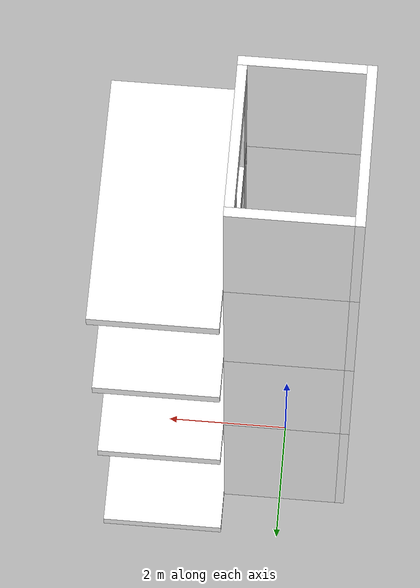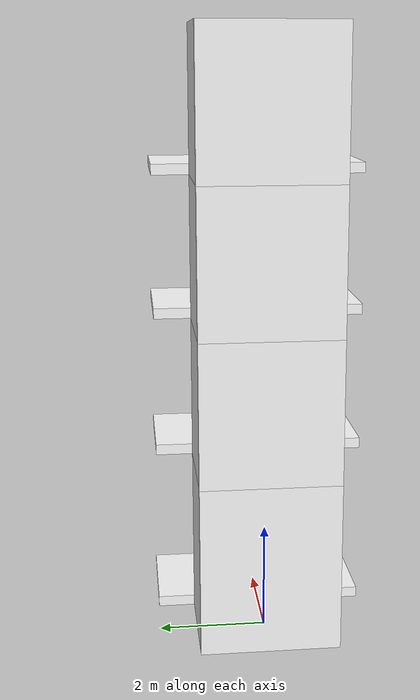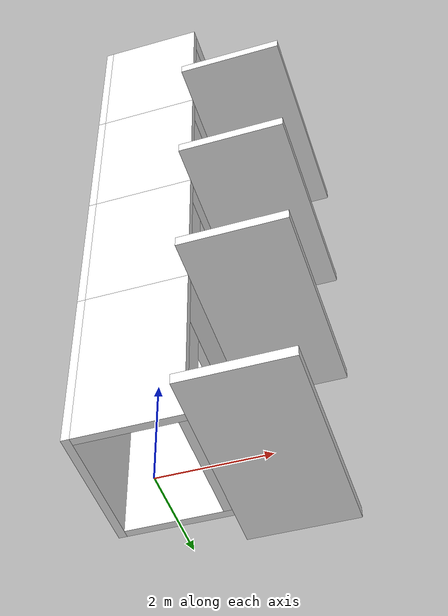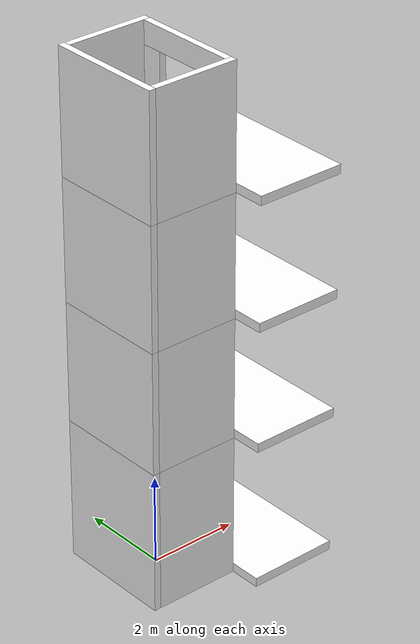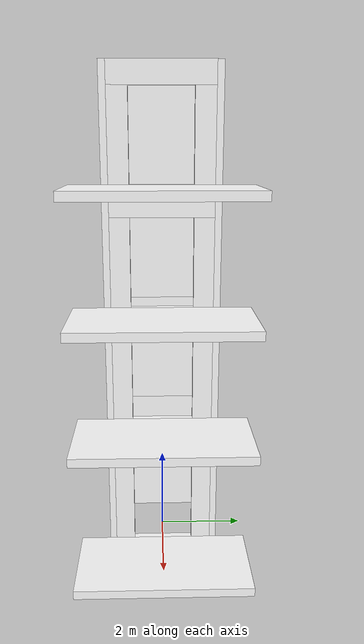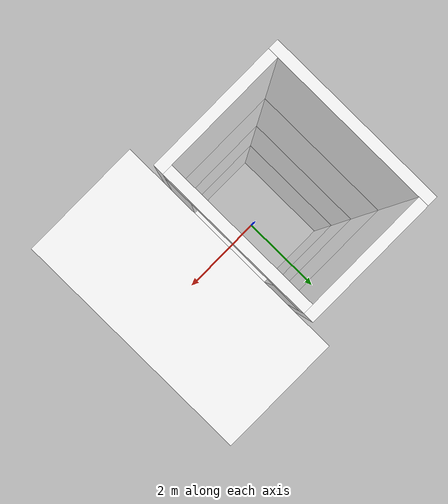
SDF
<?xml version="1.0"?>
<sdf version="1.6">
  <model name="elevator">
    <pose>0 0 0.2 0 0 0</pose>
    <!-- ========================= START OF WALLS ========================== -->
    <link name="structure">
      <pose>0.0 0.0 0.0 0 0 0</pose>
      <inertial>
        <mass>1000</mass>
        <inertia>
          <ixx>10974.166666666666</ixx>
          <ixy>0</ixy>
          <ixz>0</ixz>
          <iyy>10854.166666666666</iyy>
          <iyz>0</iyz>
          <izz>546.6666666666667</izz>
        </inertia>
        <pose>0 0 3.2 0 0 0</pose>
      </inertial>
      <visual name="wall_front_bottom_visual_0">
        <pose>0.875 0.0 -0.1 0 0 0</pose>
        <geometry>
          <box>
            <size>0.15 2.3 0.2</size>
          </box>
        </geometry>
        <material>
          <ambient>1.0 1.0 1.0 1</ambient>
          <diffuse>1.0 1.0 1.0 1</diffuse>
          <specular>0.1 0.1 0.1 1</specular>
        </material>
      </visual>
      <collision name="wall_front_bottom_collision_0">
        <pose>0.875 0.0 -0.1 0 0 0</pose>
        <geometry>
          <box>
            <size>0.15 2.3 0.2</size>
          </box>
        </geometry>
      </collision>
      <visual name="wall_front_top_visual_0">
        <pose>0.875 0.0 2.5 0 0 0</pose>
        <geometry>
          <box>
            <size>0.15 2.3 1.0</size>
          </box>
        </geometry>
        <material>
          <ambient>1.0 1.0 1.0 1</ambient>
          <diffuse>1.0 1.0 1.0 1</diffuse>
          <specular>0.1 0.1 0.1 1</specular>
        </material>
      </visual>
      <collision name="wall_front_top_collision_0">
        <pose>0.875 0.0 2.5 0 0 0</pose>
        <geometry>
          <box>
            <size>0.15 2.3 1.0</size>
          </box>
        </geometry>
      </collision>
      <visual name="wall_front_right_visual_0">
        <pose>0.875 -0.925 1.0 0 0 0</pose>
        <geometry>
          <box>
            <size>0.15 0.45 2.0</size>
          </box>
        </geometry>
        <material>
          <ambient>1.0 1.0 1.0 1</ambient>
          <diffuse>1.0 1.0 1.0 1</diffuse>
          <specular>0.1 0.1 0.1 1</specular>
        </material>
      </visual>
      <collision name="wall_front_right_collision_0">
        <pose>0.875 -0.925 1.0 0 0 0</pose>
        <geometry>
          <box>
            <size>0.15 0.45 2.0</size>
          </box>
        </geometry>
      </collision>
      <visual name="wall_front_left_visual_0">
        <pose>0.875 0.925 1.0 0 0 0</pose>
        <geometry>
          <box>
            <size>0.15 0.45 2.0</size>
          </box>
        </geometry>
        <material>
          <ambient>1.0 1.0 1.0 1</ambient>
          <diffuse>1.0 1.0 1.0 1</diffuse>
          <specular>0.1 0.1 0.1 1</specular>
        </material>
      </visual>
      <collision name="wall_front_left_collision_0">
        <pose>0.875 0.925 1.0 0 0 0</pose>
        <geometry>
          <box>
            <size>0.15 0.45 2.0</size>
          </box>
        </geometry>
      </collision>
      <visual name="wall_right_visual_0">
        <pose>0.0 -1.225 1.4 0 0 0</pose>
        <geometry>
          <box>
            <size>1.9 0.15 3.2</size>
          </box>
        </geometry>
        <material>
          <ambient>1.0 1.0 1.0 1</ambient>
          <diffuse>1.0 1.0 1.0 1</diffuse>
          <specular>0.1 0.1 0.1 1</specular>
        </material>
      </visual>
      <collision name="wall_right_collision_0">
        <pose>0.0 -1.225 1.4 0 0 0</pose>
        <geometry>
          <box>
            <size>1.9 0.15 3.2</size>
          </box>
        </geometry>
      </collision>
      <visual name="wall_left_visual_0">
        <pose>0.0 1.225 1.4 0 0 0</pose>
        <geometry>
          <box>
            <size>1.9 0.15 3.2</size>
          </box>
        </geometry>
        <material>
          <ambient>1.0 1.0 1.0 1</ambient>
          <diffuse>1.0 1.0 1.0 1</diffuse>
          <specular>0.1 0.1 0.1 1</specular>
        </material>
      </visual>
      <collision name="wall_left_collision_0">
        <pose>0.0 1.225 1.4 0 0 0</pose>
        <geometry>
          <box>
            <size>1.9 0.15 3.2</size>
          </box>
        </geometry>
      </collision>
      <visual name="wall_rear_visual_0">
        <pose>-1.025 0.0 1.4 0 0 0</pose>
        <geometry>
          <box>
            <size>0.15 2.6 3.2</size>
          </box>
        </geometry>
        <material>
          <ambient>1.0 1.0 1.0 1</ambient>
          <diffuse>1.0 1.0 1.0 1</diffuse>
          <specular>0.1 0.1 0.1 1</specular>
        </material>
      </visual>
      <collision name="wall_rear_collision_0">
        <pose>-1.025 0.0 1.4 0 0 0</pose>
        <geometry>
          <box>
            <size>0.15 2.6 3.2</size>
          </box>
        </geometry>
      </collision>
      <visual name="entrance_visual_0">
        <pose>1.95 0.0 -0.1 0 0 0</pose>
        <geometry>
          <box>
            <size>2.0 4.0 0.2</size>
          </box>
        </geometry>
        <material>
          <ambient>1.0 1.0 1.0 1</ambient>
          <diffuse>1.0 1.0 1.0 1</diffuse>
          <specular>0.1 0.1 0.1 1</specular>
        </material>
      </visual>
      <collision name="entrance_collision_0">
        <pose>1.95 0.0 -0.1 0 0 0</pose>
        <geometry>
          <box>
            <size>2.0 4.0 0.2</size>
          </box>
        </geometry>
      </collision>
      <visual name="wall_front_bottom_visual_1">
        <pose>0.875 0.0 3.1 0 0 0</pose>
        <geometry>
          <box>
            <size>0.15 2.3 0.2</size>
          </box>
        </geometry>
        <material>
          <ambient>1.0 1.0 1.0 1</ambient>
          <diffuse>1.0 1.0 1.0 1</diffuse>
          <specular>0.1 0.1 0.1 1</specular>
        </material>
      </visual>
      <collision name="wall_front_bottom_collision_1">
        <pose>0.875 0.0 3.1 0 0 0</pose>
        <geometry>
          <box>
            <size>0.15 2.3 0.2</size>
          </box>
        </geometry>
      </collision>
      <visual name="wall_front_top_visual_1">
        <pose>0.875 0.0 5.45 0 0 0</pose>
        <geometry>
          <box>
            <size>0.15 2.3 0.5</size>
          </box>
        </geometry>
        <material>
          <ambient>1.0 1.0 1.0 1</ambient>
          <diffuse>1.0 1.0 1.0 1</diffuse>
          <specular>0.1 0.1 0.1 1</specular>
        </material>
      </visual>
      <collision name="wall_front_top_collision_1">
        <pose>0.875 0.0 5.45 0 0 0</pose>
        <geometry>
          <box>
            <size>0.15 2.3 0.5</size>
          </box>
        </geometry>
      </collision>
      <visual name="wall_front_right_visual_1">
        <pose>0.875 -0.925 4.2 0 0 0</pose>
        <geometry>
          <box>
            <size>0.15 0.45 2.0</size>
          </box>!--
        </geometry>
        <material>
          <ambient>1.0 1.0 1.0 1</ambient>
          <diffuse>1.0 1.0 1.0 1</diffuse>
          <specular>0.1 0.1 0.1 1</specular>
        </material>
      </visual>
      <collision name="wall_front_right_collision_1">
        <pose>0.875 -0.925 4.2 0 0 0</pose>
        <geometry>
          <box>
            <size>0.15 0.45 2.0</size>
          </box>
        </geometry>
      </collision>
      <visual name="wall_front_left_visual_1">
        <pose>0.875 0.925 4.2 0 0 0</pose>
        <geometry>
          <box>
            <size>0.15 0.45 2.0</size>
          </box>
        </geometry>
        <material>
          <ambient>1.0 1.0 1.0 1</ambient>
          <diffuse>1.0 1.0 1.0 1</diffuse>
          <specular>0.1 0.1 0.1 1</specular>
        </material>
      </visual>
      <collision name="wall_front_left_collision_1">
        <pose>0.875 0.925 4.2 0 0 0</pose>
        <geometry>
          <box>
            <size>0.15 0.45 2.0</size>
          </box>
        </geometry>
      </collision>
      <visual name="wall_right_visual_1">
        <pose>0.0 -1.225 4.35 0 0 0</pose>
        <geometry>
          <box>
            <size>1.9 0.15 2.7</size>
          </box>
        </geometry>
        <material>
          <ambient>1.0 1.0 1.0 1</ambient>
          <diffuse>1.0 1.0 1.0 1</diffuse>
          <specular>0.1 0.1 0.1 1</specular>
        </material>
      </visual>
      <collision name="wall_right_collision_1">
        <pose>0.0 -1.225 4.35 0 0 0</pose>
        <geometry>
          <box>
            <size>1.9 0.15 2.7</size>
          </box>
        </geometry>
      </collision>
      <visual name="wall_left_visual_1">
        <pose>0.0 1.225 4.35 0 0 0</pose>
        <geometry>
          <box>
            <size>1.9 0.15 2.7</size>
          </box>
        </geometry>
        <material>
          <ambient>1.0 1.0 1.0 1</ambient>
          <diffuse>1.0 1.0 1.0 1</diffuse>
          <specular>0.1 0.1 0.1 1</specular>
        </material>
      </visual>
      <collision name="wall_left_collision_1">
        <pose>0.0 1.225 4.35 0 0 0</pose>
        <geometry>
          <box>
            <size>1.9 0.15 2.7</size>
          </box>
        </geometry>
      </collision>
      <visual name="wall_rear_visual_1">
        <pose>-1.025 0.0 4.35 0 0 0</pose>
        <geometry>
          <box>
            <size>0.15 2.6 2.7</size>
          </box>
        </geometry>
        <material>
          <ambient>1.0 1.0 1.0 1</ambient>
          <diffuse>1.0 1.0 1.0 1</diffuse>
          <specular>0.1 0.1 0.1 1</specular>
        </material>
      </visual>
      <collision name="wall_rear_collision_1">
        <pose>-1.025 0.0 4.35 0 0 0</pose>
        <geometry>
          <box>
            <size>0.15 2.6 2.7</size>
          </box>
        </geometry>
      </collision>
      <visual name="entrance_visual_1">
        <pose>1.95 0.0 3.1 0 0 0</pose>
        <geometry>
          <box>
            <size>2.0 4.0 0.2</size>
          </box>
        </geometry>
        <material>
          <ambient>1.0 1.0 1.0 1</ambient>
          <diffuse>1.0 1.0 1.0 1</diffuse>
          <specular>0.1 0.1 0.1 1</specular>
        </material>
      </visual>
      <collision name="entrance_collision_1">
        <pose>1.95 0.0 3.1 0 0 0</pose>
        <geometry>
          <box>
            <size>2.0 4.0 0.2</size>
          </box>
        </geometry>
      </collision>
      <visual name="wall_front_bottom_visual_2">
        <pose>0.875 0.0 5.8 0 0 0</pose>
        <geometry>
          <box>
            <size>0.15 2.3 0.2</size>
          </box>
        </geometry>
        <material>
          <ambient>1.0 1.0 1.0 1</ambient>
          <diffuse>1.0 1.0 1.0 1</diffuse>
          <specular>0.1 0.1 0.1 1</specular>
        </material>
      </visual>
      <collision name="wall_front_bottom_collision_2">
        <pose>0.875 0.0 5.8 0 0 0</pose>
        <geometry>
          <box>
            <size>0.15 2.3 0.2</size>
          </box>
        </geometry>
      </collision>
      <visual name="wall_front_top_visual_2">
        <pose>0.875 0.0 8.15 0 0 0</pose>
        <geometry>
          <box>
            <size>0.15 2.3 0.5</size>
          </box>
        </geometry>
        <material>
          <ambient>1.0 1.0 1.0 1</ambient>
          <diffuse>1.0 1.0 1.0 1</diffuse>
          <specular>0.1 0.1 0.1 1</specular>
        </material>
      </visual>
      <collision name="wall_front_top_collision_2">
        <pose>0.875 0.0 8.15 0 0 0</pose>
        <geometry>
          <box>
            <size>0.15 2.3 0.5</size>
          </box>
        </geometry>
      </collision>
      <visual name="wall_front_right_visual_2">
        <pose>0.875 -0.925 6.9 0 0 0</pose>
        <geometry>
          <box>
            <size>0.15 0.45 2.0</size>
          </box>
        </geometry>
        <material>
          <ambient>1.0 1.0 1.0 1</ambient>
          <diffuse>1.0 1.0 1.0 1</diffuse>
          <specular>0.1 0.1 0.1 1</specular>
        </material>
      </visual>
      <collision name="wall_front_right_collision_2">
        <pose>0.875 -0.925 6.9 0 0 0</pose>
        <geometry>
          <box>
            <size>0.15 0.45 2.0</size>
          </box>
        </geometry>
      </collision>
      <visual name="wall_front_left_visual_2">
        <pose>0.875 0.925 6.9 0 0 0</pose>
        <geometry>
          <box>
            <size>0.15 0.45 2.0</size>
          </box>
        </geometry>
        <material>
          <ambient>1.0 1.0 1.0 1</ambient>
          <diffuse>1.0 1.0 1.0 1</diffuse>
          <specular>0.1 0.1 0.1 1</specular>
        </material>
      </visual>
      <collision name="wall_front_left_collision_2">
        <pose>0.875 0.925 6.9 0 0 0</pose>
        <geometry>
          <box>
            <size>0.15 0.45 2.0</size>
          </box>
        </geometry>
      </collision>
      <visual name="wall_right_visual_2">
        <pose>0.0 -1.225 7.05 0 0 0</pose>
        <geometry>
          <box>
            <size>1.9 0.15 2.7</size>
          </box>
        </geometry>
        <material>
          <ambient>1.0 1.0 1.0 1</ambient>
          <diffuse>1.0 1.0 1.0 1</diffuse>
          <specular>0.1 0.1 0.1 1</specular>
        </material>
      </visual>
      <collision name="wall_right_collision_2">
        <pose>0.0 -1.225 7.05 0 0 0</pose>
        <geometry>
          <box>
            <size>1.9 0.15 2.7</size>
          </box>
        </geometry>
      </collision>
      <visual name="wall_left_visual_2">
        <pose>0.0 1.225 7.05 0 0 0</pose>
        <geometry>
          <box>
            <size>1.9 0.15 2.7</size>
          </box>
        </geometry>
        <material>
          <ambient>1.0 1.0 1.0 1</ambient>
          <diffuse>1.0 1.0 1.0 1</diffuse>
          <specular>0.1 0.1 0.1 1</specular>
        </material>
      </visual>
      <collision name="wall_left_collision_2">
        <pose>0.0 1.225 7.05 0 0 0</pose>
        <geometry>
          <box>
            <size>1.9 0.15 2.7</size>
          </box>
        </geometry>
      </collision>
      <visual name="wall_rear_visual_2">
        <pose>-1.025 0.0 7.05 0 0 0</pose>
        <geometry>
          <box>
            <size>0.15 2.6 2.7</size>
          </box>
        </geometry>
        <material>
          <ambient>1.0 1.0 1.0 1</ambient>
          <diffuse>1.0 1.0 1.0 1</diffuse>
          <specular>0.1 0.1 0.1 1</specular>
        </material>
      </visual>
      <collision name="wall_rear_collision_2">
        <pose>-1.025 0.0 7.05 0 0 0</pose>
        <geometry>
          <box>
            <size>0.15 2.6 2.7</size>
          </box>
        </geometry>
      </collision>
      <visual name="entrance_visual_2">
        <pose>1.95 0.0 5.8 0 0 0</pose>
        <geometry>
          <box>
            <size>2.0 4.0 0.2</size>
          </box>
        </geometry>
        <material>
          <ambient>1.0 1.0 1.0 1</ambient>
          <diffuse>1.0 1.0 1.0 1</diffuse>
          <specular>0.1 0.1 0.1 1</specular>
        </material>
      </visual>
      <collision name="entrance_collision_2">
        <pose>1.95 0.0 5.8 0 0 0</pose>
        <geometry>
          <box>
            <size>2.0 4.0 0.2</size>
          </box>
        </geometry>
      </collision>
      <visual name="wall_front_bottom_visual_3">
        <pose>0.875 0.0 8.5 0 0 0</pose>
        <geometry>
          <box>
            <size>0.15 2.3 0.2</size>
          </box>
        </geometry>
        <material>
          <ambient>1.0 1.0 1.0 1</ambient>
          <diffuse>1.0 1.0 1.0 1</diffuse>
          <specular>0.1 0.1 0.1 1</specular>
        </material>
      </visual>
      <collision name="wall_front_bottom_collision_3">
        <pose>0.875 0.0 8.5 0 0 0</pose>
        <geometry>
          <box>
            <size>0.15 2.3 0.2</size>
          </box>
        </geometry>
      </collision>
      <visual name="wall_front_top_visual_3">
        <pose>0.875 0.0 10.85 0 0 0</pose>
        <geometry>
          <box>
            <size>0.15 2.3 0.5</size>
          </box>
        </geometry>
        <material>
          <ambient>1.0 1.0 1.0 1</ambient>
          <diffuse>1.0 1.0 1.0 1</diffuse>
          <specular>0.1 0.1 0.1 1</specular>
        </material>
      </visual>
      <collision name="wall_front_top_collision_3">
        <pose>0.875 0.0 10.85 0 0 0</pose>
        <geometry>
          <box>
            <size>0.15 2.3 0.5</size>
          </box>
        </geometry>
      </collision>
      <visual name="wall_front_right_visual_3">
        <pose>0.875 -0.925 9.6 0 0 0</pose>
        <geometry>
          <box>
            <size>0.15 0.45 2.0</size>
          </box>
        </geometry>
        <material>
          <ambient>1.0 1.0 1.0 1</ambient>
          <diffuse>1.0 1.0 1.0 1</diffuse>
          <specular>0.1 0.1 0.1 1</specular>
        </material>
      </visual>
      <collision name="wall_front_right_collision_3">
        <pose>0.875 -0.925 9.6 0 0 0</pose>
        <geometry>
          <box>
            <size>0.15 0.45 2.0</size>
          </box>
        </geometry>
      </collision>
      <visual name="wall_front_left_visual_3">
        <pose>0.875 0.925 9.6 0 0 0</pose>
        <geometry>
          <box>
            <size>0.15 0.45 2.0</size>
          </box>
        </geometry>
        <material>
          <ambient>1.0 1.0 1.0 1</ambient>
          <diffuse>1.0 1.0 1.0 1</diffuse>
          <specular>0.1 0.1 0.1 1</specular>
        </material>
      </visual>
      <collision name="wall_front_left_collision_3">
        <pose>0.875 0.925 9.6 0 0 0</pose>
        <geometry>
          <box>
            <size>0.15 0.45 2.0</size>
          </box>
        </geometry>
      </collision>
      <visual name="wall_right_visual_3">
        <pose>0.0 -1.225 9.75 0 0 0</pose>
        <geometry>
          <box>
            <size>1.9 0.15 2.7</size>
          </box>
        </geometry>
        <material>
          <ambient>1.0 1.0 1.0 1</ambient>
          <diffuse>1.0 1.0 1.0 1</diffuse>
          <specular>0.1 0.1 0.1 1</specular>
        </material>
      </visual>
      <collision name="wall_right_collision_3">
        <pose>0.0 -1.225 9.75 0 0 0</pose>
        <geometry>
          <box>
            <size>1.9 0.15 2.7</size>
          </box>
        </geometry>
      </collision>
      <visual name="wall_left_visual_3">
        <pose>0.0 1.225 9.75 0 0 0</pose>
        <geometry>
          <box>
            <size>1.9 0.15 2.7</size>
          </box>
        </geometry>
        <material>
          <ambient>1.0 1.0 1.0 1</ambient>
          <diffuse>1.0 1.0 1.0 1</diffuse>
          <specular>0.1 0.1 0.1 1</specular>
        </material>
      </visual>
      <collision name="wall_left_collision_3">
        <pose>0.0 1.225 9.75 0 0 0</pose>
        <geometry>
          <box>
            <size>1.9 0.15 2.7</size>
          </box>
        </geometry>
      </collision>
      <visual name="wall_rear_visual_3">
        <pose>-1.025 0.0 9.75 0 0 0</pose>
        <geometry>
          <box>
            <size>0.15 2.6 2.7</size>
          </box>
        </geometry>
        <material>
          <ambient>1.0 1.0 1.0 1</ambient>
          <diffuse>1.0 1.0 1.0 1</diffuse>
          <specular>0.1 0.1 0.1 1</specular>
        </material>
      </visual>
      <collision name="wall_rear_collision_3">
        <pose>-1.025 0.0 9.75 0 0 0</pose>
        <geometry>
          <box>
            <size>0.15 2.6 2.7</size>
          </box>
        </geometry>
      </collision>
      <visual name="entrance_visual_3">
        <pose>1.95 0.0 8.5 0 0 0</pose>
        <geometry>
          <box>
            <size>2.0 4.0 0.2</size>
          </box>
        </geometry>
        <material>
          <ambient>1.0 1.0 1.0 1</ambient>
          <diffuse>1.0 1.0 1.0 1</diffuse>
          <specular>0.1 0.1 0.1 1</specular>
        </material>
      </visual>
      <collision name="entrance_collision_3">
        <pose>1.95 0.0 8.5 0 0 0</pose>
        <geometry>
          <box>
            <size>2.0 4.0 0.2</size>
          </box>
        </geometry>
      </collision>
    </link>

    <joint name="foundation" type="fixed">
      <parent>world</parent>
      <child>structure</child>
    </joint>

    <!-- ========================== END OF WALLS =========================== -->
    <!-- ========================= START OF DOORS ========================== -->
    <!-- ========================== END OF DOORS =========================== -->
    <!-- ========================= START OF CABIN ========================== -->
    <!-- ========================== END OF CABIN =========================== -->
    <!-- =================== START OF FLOOR REFERENCES ===================== -->
    <!-- ==================== END OF FLOOR REFERENCES ====================== -->
    <!-- ===================== START OF DOOR LIDARS ======================== -->
    <!-- ====================== END OF DOOR LIDARS ========================= -->
    <!-- ====================== START OF CONTROLLER ======================== -->
    <!-- ======================= END OF CONTROLLER ========================= -->

  </model>
</sdf>
